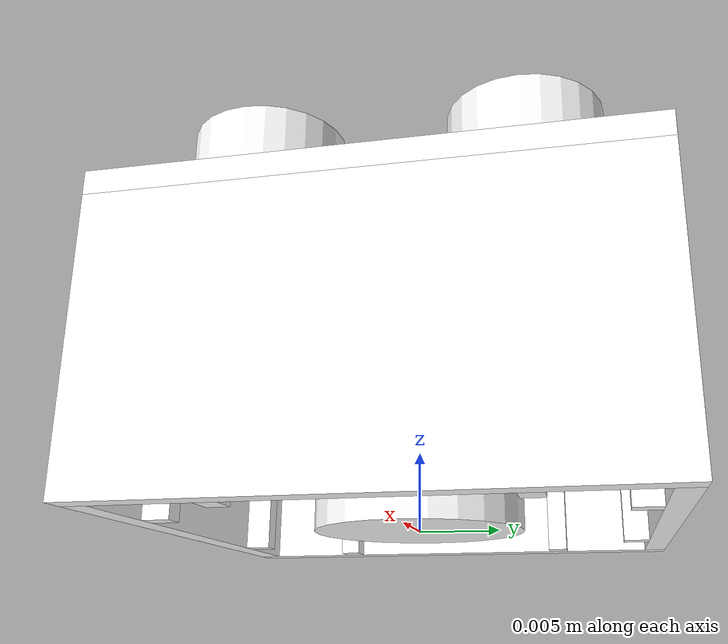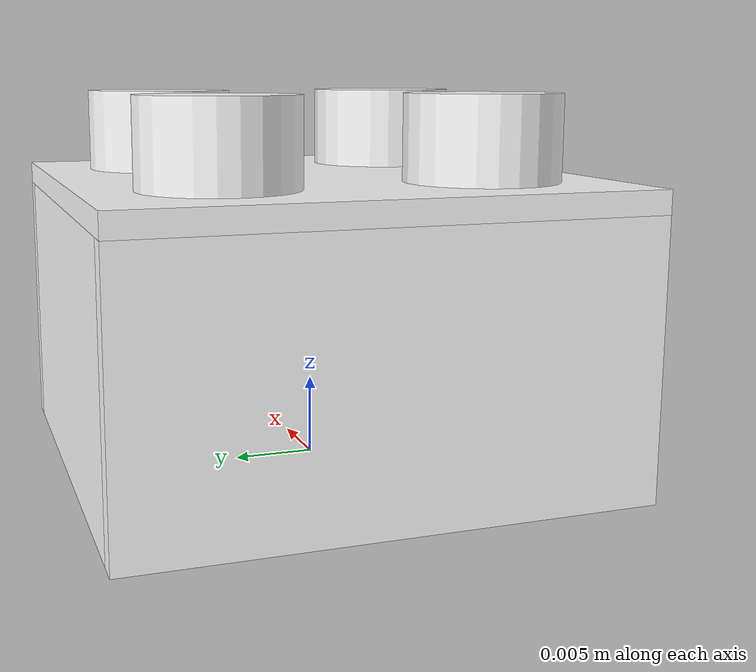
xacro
<?xml version="1.0"?>
<robot xmlns:xacro="http://www.ros.org/wiki/xacro" name="lego">
    <!-- Global material for everything -->
    <material name="white">
        <color rgba="1 1 1 1"/>
    </material>

    <!-- Macro for visual and collision boxes -->
    <!-- Length, width, and height are along X, Y, and Z -->
    <xacro:macro name="pri_inner" params="x y z l w h">
        <origin rpy="0 0 0" xyz="${x} ${y} ${z}"/>
        <geometry>
            <box size="${l} ${w} ${h}"/>
        </geometry>
    </xacro:macro>
    <!-- Macro to combine the visual and collision box -->
    <xacro:macro name="pri" params="x y z l w h">
        <visual>
            <xacro:pri_inner x="${x}" y="${y}" z="${z}"
                             l="${l}" w="${w}" h="${h}"/>
            <material name="white"/>
        </visual>
        <collision>
            <xacro:pri_inner x="${x}" y="${y}" z="${z}"
                             l="${l}" w="${w}" h="${h}"/>
        </collision>
    </xacro:macro>

    <!-- Macro for visual and collision cylinders -->
    <!-- Only need to orient vertically -->
    <xacro:macro name="cyl_inner" params="x y z r l">
        <origin rpy="0 0 0" xyz="${x} ${y} ${z}"/>
        <geometry>
            <cylinder radius="${r}" length="${l}"/>
        </geometry>
    </xacro:macro>
    <!-- Macro to combine the visual and collision cylinders -->
    <xacro:macro name="cyl" params="x y z r l">
        <visual>
            <xacro:cyl_inner x="${x}" y="${y}" z="${z}" r="${r}" l="${l}"/>
            <material name="white"/>
        </visual>
        <collision>
            <xacro:cyl_inner x="${x}" y="${y}" z="${z}" r="${r}" l="${l}"/>
        </collision>
    </xacro:macro>

    <link name="block">
        <!-- Top panel -->
        <xacro:pri x="0"      y="0"      z=".01762"
                   l=".03163" w=".03163" h=".00144"/>
        <!-- Front and back panels -->
        <xacro:pri x=".015095" y="0"      z=".00845"
                   l=".00144"  w=".03163" h=".0169"/>
        <xacro:pri x="-.015095" y="0"      z=".00845"
                   l=".00144"   w=".03163" h=".0169"/>
        <!-- Side panels -->
        <xacro:pri x="0"      y=".015095" z=".00845"
                   l=".02875" w=".00144"  h=".0169"/>
        <xacro:pri x="0"      y="-.015095" z=".00845"
                   l=".02875" w=".00144"   h=".0169"/>

        <!-- Four top studs and the center one -->
        <xacro:cyl x=".008" y=".008" z=".020935" r=".004695" l=".00519"/>
        <xacro:cyl x="-.008" y=".008" z=".020935" r=".004695" l=".00519"/>
        <xacro:cyl x=".008" y="-.008" z=".020935" r=".004695" l=".00519"/>
        <xacro:cyl x="-.008" y="-.008" z=".020935" r=".004695" l=".00519"/>
        <xacro:cyl x="0" y="0" z=".00845" r=".006575" l=".0169"/>

        <!-- The eight braces on the bottom part -->
        <xacro:pri x=".013535" y=".00799" z=".00845"
                   l=".00168"  w=".00131" h=".0169"/>
        <xacro:pri x=".013535" y="-.00799" z=".00845"
                   l=".00168"  w=".00131"  h=".0169"/>
        <xacro:pri x="-.013535" y=".00799" z=".00845"
                   l=".00168"   w=".00131" h=".0169"/>
        <xacro:pri x="-.013535" y="-.00799" z=".00845"
                   l=".00168"   w=".00131"  h=".0169"/>
        <xacro:pri x=".00799" y=".013535" z=".00845"
                   l=".00131" w=".00168"  h=".0169"/>
        <xacro:pri x="-.00799" y=".013535" z=".00845"
                   l=".00131"  w=".00168"  h=".0169"/>
        <xacro:pri x=".00799" y="-.013535" z=".00845"
                   l=".00131" w=".00168"   h=".0169"/>
        <xacro:pri x="-.00799" y="-.013535" z=".00845"
                   l=".00131"  w=".00168"   h=".0169"/>

        <!-- Inertia is an approximation for now -->
        <inertial>
            <origin rpy="0 0 0" xyz="0 0 ${.02209/2}"/>
            <xacro:property name="m" value="${4000 * .03163 * .03163 * .02209}"/>
            <mass value="${m}"/>
            <inertia ixx="${1/12 * m * (.03163*.03163 + .02209*.02209)}"
                     iyy="${1/12 * m * (.03163*.03163 + .02209*.02209)}"
                     izz="${1/12 * m * (2*.03163*.03163)}"
                     ixy="0" ixz="0" iyz="0"/>
        </inertial>
    </link>
</robot>
